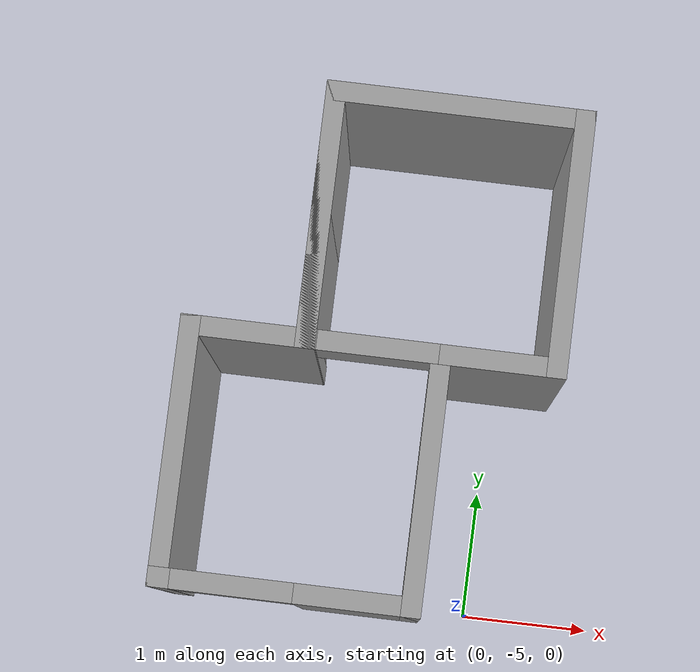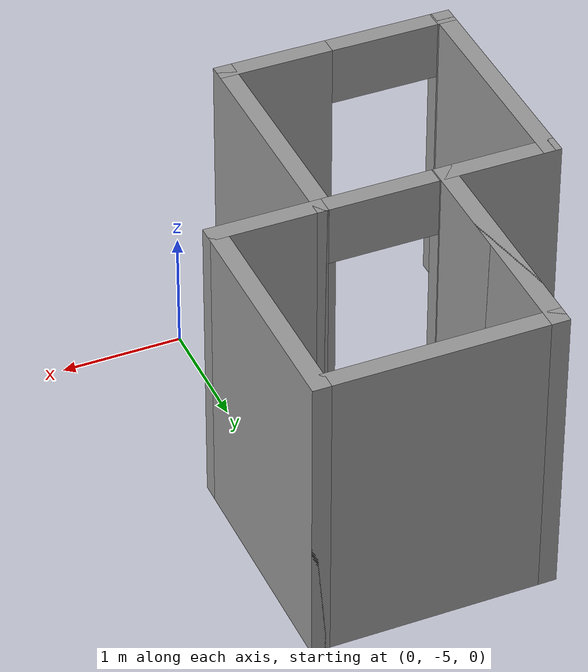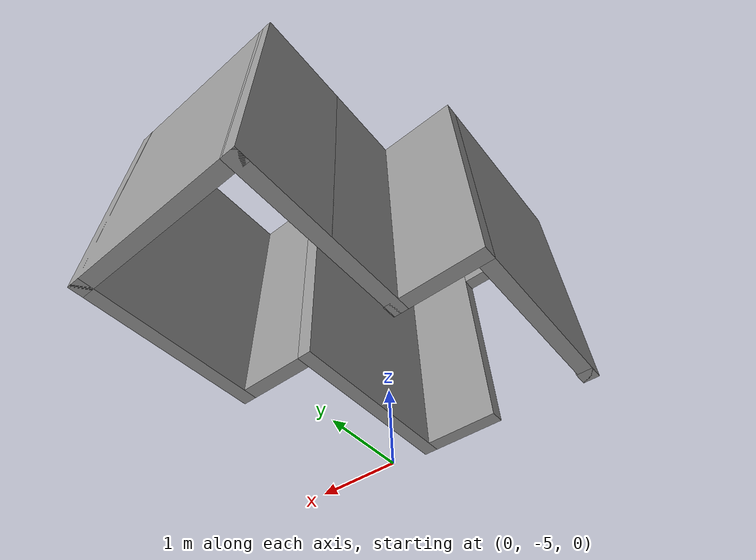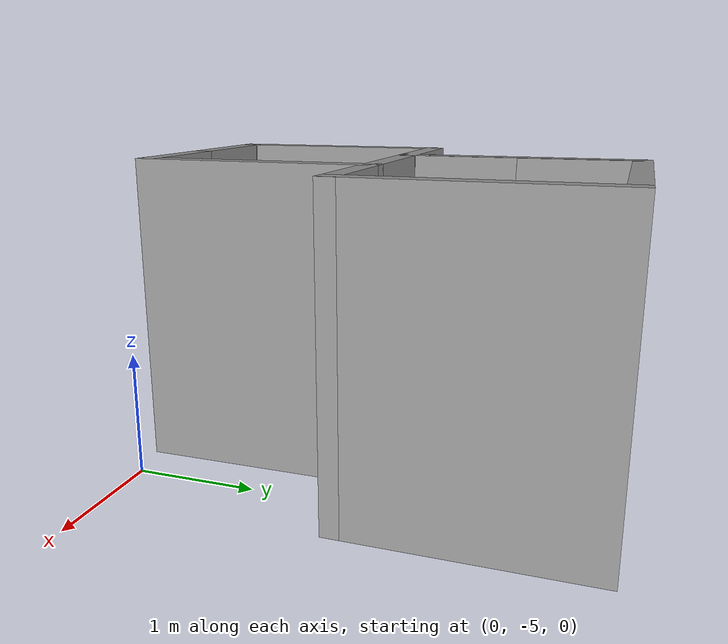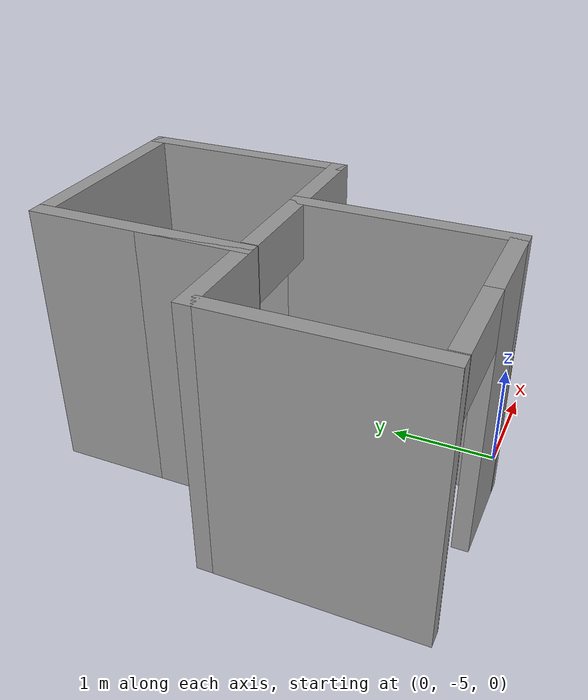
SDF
<?xml version='1.0'?>
<sdf version='1.6'>
  <model name='Map4'>
    <pose frame=''>-0.94 -3.17 0 0 -0 0</pose>
    <link name='Wall_0'>
      <collision name='Wall_0_Collision'>
        <geometry>
          <box>
            <size>2 0.15 2.5</size>
          </box>
        </geometry>
        <pose frame=''>0 0 1.25 0 -0 0</pose>
      </collision>
      <visual name='Wall_0_Visual'>
        <pose frame=''>0 0 1.25 0 -0 0</pose>
        <geometry>
          <box>
            <size>2 0.15 2.5</size>
          </box>
        </geometry>
        <material>
          <script>
            <uri>file://media/materials/scripts/gazebo.material</uri>
            <name>Gazebo/Grey</name>
          </script>
          <ambient>1 1 1 1</ambient>
        </material>
      </visual>
      <pose frame=''>0.425 1.85 0 0 -0 0</pose>
    </link>
    <link name='Wall_1'>
      <collision name='Wall_1_Collision'>
        <geometry>
          <box>
            <size>2 0.15 2.5</size>
          </box>
        </geometry>
        <pose frame=''>0 0 1.25 0 -0 0</pose>
      </collision>
      <visual name='Wall_1_Visual'>
        <pose frame=''>0 0 1.25 0 -0 0</pose>
        <geometry>
          <box>
            <size>2 0.15 2.5</size>
          </box>
        </geometry>
        <material>
          <script>
            <uri>file://media/materials/scripts/gazebo.material</uri>
            <name>Gazebo/Grey</name>
          </script>
          <ambient>1 1 1 1</ambient>
        </material>
      </visual>
      <pose frame=''>1.35 0.925 0 0 0 -1.5708</pose>
    </link>
    <link name='Wall_2'>
      <pose frame=''>0.425 0 0 0 -0 3.14159</pose>
      <visual name='Wall_2_Visual_0'>
        <pose frame=''>-0.529212 0 1.25 0 -0 0</pose>
        <geometry>
          <box>
            <size>0.941575 0.15 2.5</size>
          </box>
        </geometry>
        <material>
          <script>
            <uri>file://media/materials/scripts/gazebo.material</uri>
            <name>Gazebo/Grey</name>
          </script>
          <ambient>1 1 1 1</ambient>
        </material>
      </visual>
      <collision name='Wall_2_Collision_0'>
        <geometry>
          <box>
            <size>0.941575 0.15 2.5</size>
          </box>
        </geometry>
        <pose frame=''>-0.529212 0 1.25 0 -0 0</pose>
      </collision>
      <visual name='Wall_2_Visual_1'>
        <pose frame=''>0.920788 0 1.25 0 -0 0</pose>
        <geometry>
          <box>
            <size>0.158425 0.15 2.5</size>
          </box>
        </geometry>
        <material>
          <script>
            <uri>file://media/materials/scripts/gazebo.material</uri>
            <name>Gazebo/Grey</name>
          </script>
          <ambient>1 1 1 1</ambient>
        </material>
      </visual>
      <collision name='Wall_2_Collision_1'>
        <geometry>
          <box>
            <size>0.158425 0.15 2.5</size>
          </box>
        </geometry>
        <pose frame=''>0.920788 0 1.25 0 -0 0</pose>
      </collision>
      <visual name='Wall_2_Visual_2'>
        <pose frame=''>0.391575 0 2.25 0 -0 0</pose>
        <geometry>
          <box>
            <size>0.9 0.15 0.5</size>
          </box>
        </geometry>
        <material>
          <script>
            <uri>file://media/materials/scripts/gazebo.material</uri>
            <name>Gazebo/Grey</name>
          </script>
          <ambient>1 1 1 1</ambient>
        </material>
      </visual>
      <collision name='Wall_2_Collision_2'>
        <geometry>
          <box>
            <size>0.9 0.15 0.5</size>
          </box>
        </geometry>
        <pose frame=''>0.391575 0 2.25 0 -0 0</pose>
      </collision>
    </link>
    <link name='Wall_3'>
      <collision name='Wall_3_Collision'>
        <geometry>
          <box>
            <size>2 0.15 2.5</size>
          </box>
        </geometry>
        <pose frame=''>0 0 1.25 0 -0 0</pose>
      </collision>
      <visual name='Wall_3_Visual'>
        <pose frame=''>0 0 1.25 0 -0 0</pose>
        <geometry>
          <box>
            <size>2 0.15 2.5</size>
          </box>
        </geometry>
        <material>
          <script>
            <uri>file://media/materials/scripts/gazebo.material</uri>
            <name>Gazebo/Grey</name>
          </script>
          <ambient>1 1 1 1</ambient>
        </material>
      </visual>
      <pose frame=''>-0.5 0.925 0 0 -0 1.5708</pose>
    </link>
    <link name='Wall_4'>
      <collision name='Wall_4_Collision'>
        <geometry>
          <box>
            <size>2 0.15 2.5</size>
          </box>
        </geometry>
        <pose frame=''>0 0 1.25 0 -0 0</pose>
      </collision>
      <visual name='Wall_4_Visual'>
        <pose frame=''>0 0 1.25 0 -0 0</pose>
        <geometry>
          <box>
            <size>2 0.15 2.5</size>
          </box>
        </geometry>
        <material>
          <script>
            <uri>file://media/materials/scripts/gazebo.material</uri>
            <name>Gazebo/Grey</name>
          </script>
          <ambient>1 1 1 1</ambient>
        </material>
      </visual>
      <pose frame=''>-0.5 0.925 0 0 0 -1.5708</pose>
    </link>
    <link name='Wall_5'>
      <collision name='Wall_5_Collision'>
        <geometry>
          <box>
            <size>1 0.15 2.5</size>
          </box>
        </geometry>
        <pose frame=''>0 0 1.25 0 -0 0</pose>
      </collision>
      <visual name='Wall_5_Visual'>
        <pose frame=''>0 0 1.25 0 -0 0</pose>
        <geometry>
          <box>
            <size>1 0.15 2.5</size>
          </box>
        </geometry>
        <material>
          <script>
            <uri>file://media/materials/scripts/gazebo.material</uri>
            <name>Gazebo/Grey</name>
          </script>
          <ambient>1 1 1 1</ambient>
        </material>
      </visual>
      <pose frame=''>-0.925 0 0 0 -0 3.14159</pose>
    </link>
    <link name='Wall_6'>
      <collision name='Wall_6_Collision'>
        <geometry>
          <box>
            <size>2 0.15 2.5</size>
          </box>
        </geometry>
        <pose frame=''>0 0 1.25 0 -0 0</pose>
      </collision>
      <visual name='Wall_6_Visual'>
        <pose frame=''>0 0 1.25 0 -0 0</pose>
        <geometry>
          <box>
            <size>2 0.15 2.5</size>
          </box>
        </geometry>
        <material>
          <script>
            <uri>file://media/materials/scripts/gazebo.material</uri>
            <name>Gazebo/Grey</name>
          </script>
          <ambient>1 1 1 1</ambient>
        </material>
      </visual>
      <pose frame=''>-1.35 -0.925 0 0 0 -1.5708</pose>
    </link>
    <link name='Wall_7'>
      <pose frame=''>-0.425 -1.85 0 0 -0 0</pose>
      <visual name='Wall_7_Visual_0'>
        <pose frame=''>-0.918987 0 1.25 0 -0 0</pose>
        <geometry>
          <box>
            <size>0.162025 0.15 2.5</size>
          </box>
        </geometry>
        <material>
          <script>
            <uri>file://media/materials/scripts/gazebo.material</uri>
            <name>Gazebo/Grey</name>
          </script>
          <ambient>1 1 1 1</ambient>
        </material>
      </visual>
      <collision name='Wall_7_Collision_0'>
        <geometry>
          <box>
            <size>0.162025 0.15 2.5</size>
          </box>
        </geometry>
        <pose frame=''>-0.918987 0 1.25 0 -0 0</pose>
      </collision>
      <visual name='Wall_7_Visual_1'>
        <pose frame=''>0.531013 0 1.25 0 -0 0</pose>
        <geometry>
          <box>
            <size>0.937975 0.15 2.5</size>
          </box>
        </geometry>
        <material>
          <script>
            <uri>file://media/materials/scripts/gazebo.material</uri>
            <name>Gazebo/Grey</name>
          </script>
          <ambient>1 1 1 1</ambient>
        </material>
      </visual>
      <collision name='Wall_7_Collision_1'>
        <geometry>
          <box>
            <size>0.937975 0.15 2.5</size>
          </box>
        </geometry>
        <pose frame=''>0.531013 0 1.25 0 -0 0</pose>
      </collision>
      <visual name='Wall_7_Visual_2'>
        <pose frame=''>-0.387975 0 2.25 0 -0 0</pose>
        <geometry>
          <box>
            <size>0.9 0.15 0.5</size>
          </box>
        </geometry>
        <material>
          <script>
            <uri>file://media/materials/scripts/gazebo.material</uri>
            <name>Gazebo/Grey</name>
          </script>
          <ambient>1 1 1 1</ambient>
        </material>
      </visual>
      <collision name='Wall_7_Collision_2'>
        <geometry>
          <box>
            <size>0.9 0.15 0.5</size>
          </box>
        </geometry>
        <pose frame=''>-0.387975 0 2.25 0 -0 0</pose>
      </collision>
    </link>
    <link name='Wall_8'>
      <collision name='Wall_8_Collision'>
        <geometry>
          <box>
            <size>2 0.15 2.5</size>
          </box>
        </geometry>
        <pose frame=''>0 0 1.25 0 -0 0</pose>
      </collision>
      <visual name='Wall_8_Visual'>
        <pose frame=''>0 0 1.25 0 -0 0</pose>
        <geometry>
          <box>
            <size>2 0.15 2.5</size>
          </box>
        </geometry>
        <material>
          <script>
            <uri>file://media/materials/scripts/gazebo.material</uri>
            <name>Gazebo/Grey</name>
          </script>
          <ambient>1 1 1 1</ambient>
        </material>
      </visual>
      <pose frame=''>0.5 -0.925 0 0 -0 1.5708</pose>
    </link>
    <static>1</static>
  </model>
</sdf>
